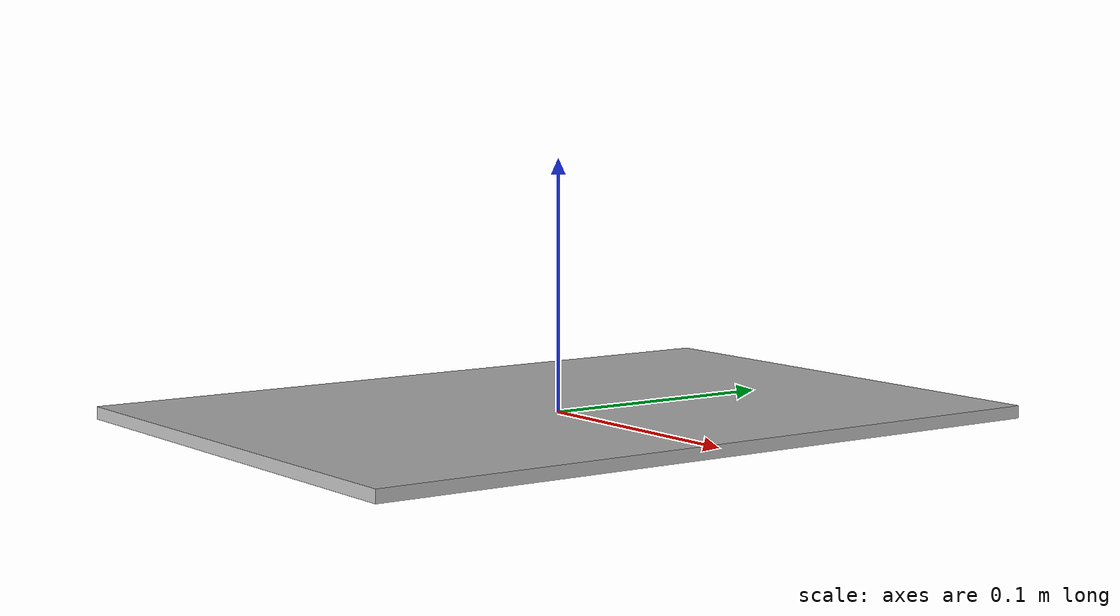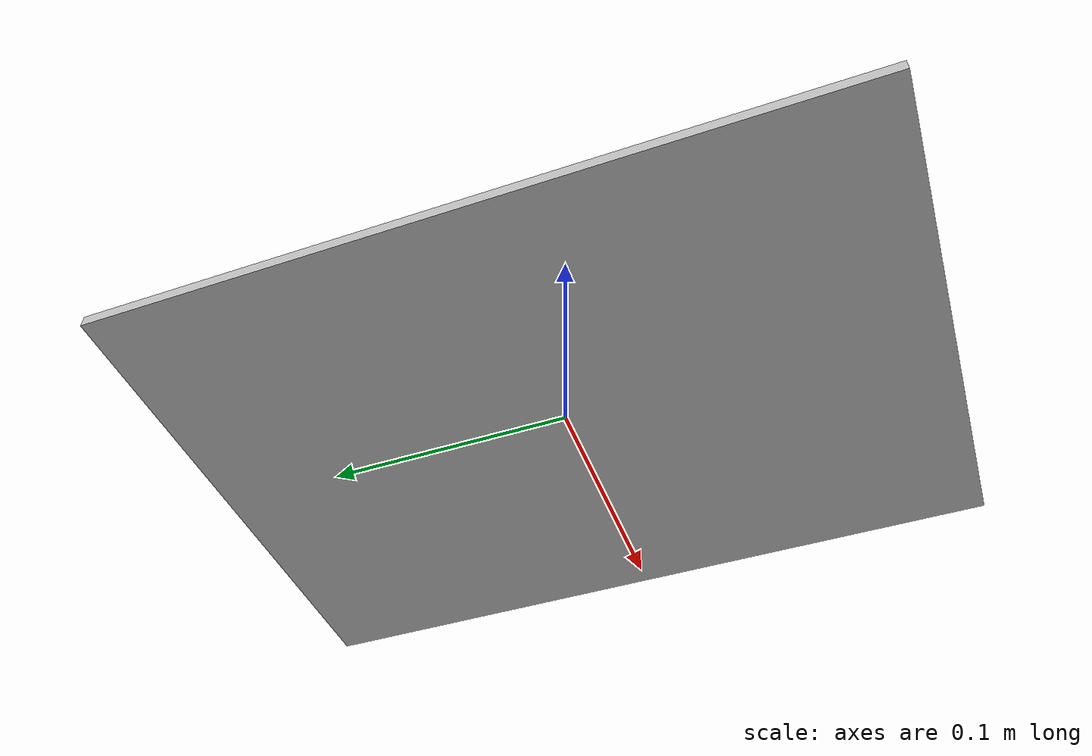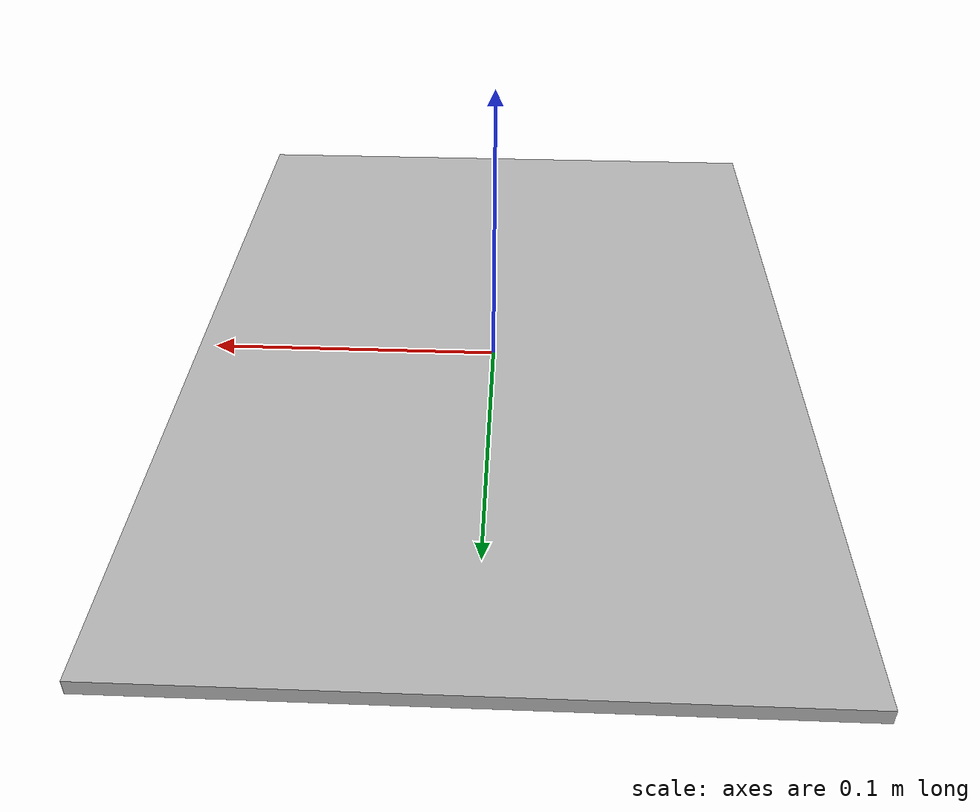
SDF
<?xml version='1.0'?>
<sdf version='1.6'>
  <model name='opencv_A4_chessboard'>
    <static>true</static>
    <link name='link_0'>
      <pose frame=''>0 0 0 0 0 0</pose>
      <visual name='visual'>
        <pose frame=''>0 0 0 0 -0 0</pose>
        <geometry>
          <box>
            <size>0.210 0.297 0.005</size>
          </box>
        </geometry>

        <material>
          <script>
            <uri>model://opencv_A4_chessboard/materials/scripts</uri>
            <uri>model://opencv_A4_chessboard/materials/textures</uri>
            <name>TexturedShape/chessboard</name>
          </script>
        </material>

        <cast_shadows>1</cast_shadows>
        <transparency>0</transparency>
      </visual>
    </link>
  </model>
</sdf>
